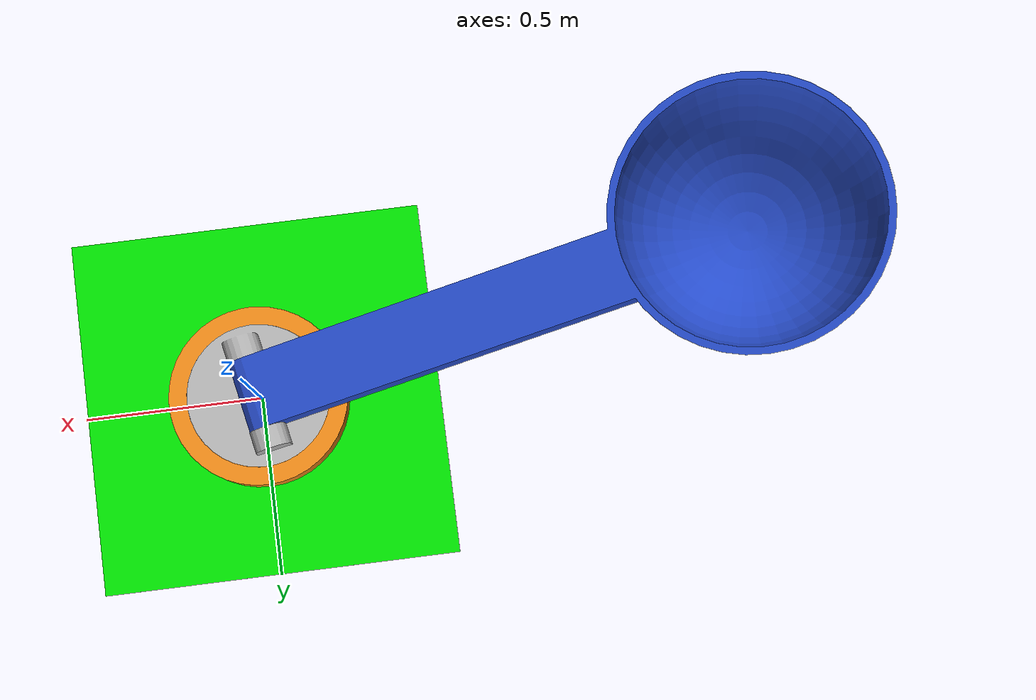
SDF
<?xml version='1.0'?>
<sdf version='1.6'>
  <model name='catapult_2'>
    <link name="world"/>
    <joint name="fixed" type="fixed">
      <parent>world</parent>
      <child>base_link</child>

    </joint>

    <link name='base_link'>
      <pose frame=''>0 0 0 0 -0 0</pose>
      <inertial>
        <pose frame=''>0 0 0.037532 0 -0 0</pose>
        <mass>12.095</mass>
        <inertia>
          <ixx>0.2406</ixx>
          <ixy>-9.1075e-34</ixy>
          <ixz>-6.7067e-34</ixz>
          <iyy>0.2406</iyy>
          <iyz>-6.0663e-18</iyz>
          <izz>0.4628</izz>
        </inertia>
      </inertial>
      <self_collide>0</self_collide>
      <kinematic>0</kinematic>
      <visual name='base_link_visual'>
        <pose frame=''>0 0 0 0 -0 0</pose>
        <geometry>
          <mesh>
            <scale>1 1 1</scale>
            <uri>/home/panyam/mybot_ws/src/hitter_pole/meshes/base_link.STL</uri>
          </mesh>
        </geometry>
        <cast_shadows>1</cast_shadows>
        <transparency>0</transparency>
        <material>
          <emissive>1 0 0.1 0</emissive>
          <ambient>1 0.509 0.047 1</ambient>
          <diffuse>1 1 0.047 1</diffuse>
          <specular>1 1 0.5 1</specular>
          <script>
            <name>Gazebo/Orange</name>
            <uri>__default__</uri>
          </script>
          <shader type='vertex'>
            <normal_map>__default__</normal_map>
          </shader>
        </material>
      </visual>
      <collision name='base_link_collision'>
        <laser_retro>0</laser_retro>
        <max_contacts>10</max_contacts>
        <pose frame=''>0 0 0 0 -0 0</pose>
        <geometry>
          <mesh>
            <uri>/home/panyam/mybot_ws/src/hitter_pole/meshes/base_link.STL</uri>
          </mesh>
        </geometry>
        <surface>
          <friction>
            <ode>
              <mu>1</mu>
              <mu2>1</mu2>
              <fdir1>0 0 0</fdir1>
              <slip1>0</slip1>
              <slip2>0</slip2>
            </ode>
            <torsional>
              <coefficient>1</coefficient>
              <patch_radius>0</patch_radius>
              <surface_radius>0</surface_radius>
              <use_patch_radius>1</use_patch_radius>
              <ode>
                <slip>0</slip>
              </ode>
            </torsional>
          </friction>
          <bounce>
            <restitution_coefficient>0</restitution_coefficient>
            <threshold>1e+06</threshold>
          </bounce>
          <contact>
            <collide_without_contact>0</collide_without_contact>
            <collide_without_contact_bitmask>1</collide_without_contact_bitmask>
            <collide_bitmask>1</collide_bitmask>
            <ode>
              <soft_cfm>0</soft_cfm>
              <soft_erp>0.2</soft_erp>
              <kp>1e+13</kp>
              <kd>1</kd>
              <max_vel>0.01</max_vel>
              <min_depth>0</min_depth>
            </ode>
            <bullet>
              <split_impulse>1</split_impulse>
              <split_impulse_penetration_threshold>-0.01</split_impulse_penetration_threshold>
              <soft_cfm>0</soft_cfm>
              <soft_erp>0.2</soft_erp>
              <kp>1e+13</kp>
              <kd>1</kd>
            </bullet>
          </contact>
        </surface>
      </collision>
    </link>
    <link name='arm_bowl'>
      <pose frame=''>0 0 0 0 -0 0</pose>
      <inertial>
        <pose frame=''>-0.87531 -0.17061 0.2793 0 -0 0</pose>
        <mass>1</mass>
        <inertia>
          <ixx>1.5373</ixx>
          <ixy>-1.822</ixy>
          <ixz>1.4294</ixz>
          <iyy>1</iyy>
          <iyz>0.27861</iyz>
          <izz>1</izz>
        </inertia>
      </inertial>
      <self_collide>0</self_collide>
      <kinematic>0</kinematic>
      <visual name='arm_bowl_visual'>
        <pose frame=''>0 0 0 0 -0 0</pose>
        <geometry>
          <mesh>
            <scale>1 1 1</scale>
            <uri>/home/panyam/mybot_ws/src/hitter_pole/meshes/arm_bowl.STL</uri>
          </mesh>
        </geometry>
        <material>
          <ambient>0 0 1 0</ambient>
          <diffuse>1 1 0 0</diffuse>
          <specular>1 0.1 0.5 1</specular>
          <emissive>0 0 0.5 1</emissive>
          <script>
            <name>Gazebo/Blue</name>
            <uri>__default__</uri>
          </script>
          <shader type='vertex'>
            <normal_map>__default__</normal_map>
          </shader>
        </material>
        <cast_shadows>1</cast_shadows>
        <transparency>0</transparency>
      </visual>
      <collision name='arm_bowl_collision'>
        <laser_retro>0</laser_retro>
        <max_contacts>10</max_contacts>
        <pose frame=''>0 0 0 0 -0 0</pose>
        <geometry>
          <mesh>
            <uri>/home/panyam/mybot_ws/src/hitter_pole/meshes/arm_bowl.STL</uri>
          </mesh>
        </geometry>
        <surface>
          <friction>
            <ode>
              <mu>1</mu>
              <mu2>1</mu2>
              <fdir1>0 0 0</fdir1>
              <slip1>0</slip1>
              <slip2>0</slip2>
            </ode>
            <torsional>
              <coefficient>1</coefficient>
              <patch_radius>0</patch_radius>
              <surface_radius>0</surface_radius>
              <use_patch_radius>1</use_patch_radius>
              <ode>
                <slip>0</slip>
              </ode>
            </torsional>
          </friction>
          <bounce>
            <restitution_coefficient>0</restitution_coefficient>
            <threshold>1e+06</threshold>
          </bounce>
          <contact>
            <collide_without_contact>0</collide_without_contact>
            <collide_without_contact_bitmask>1</collide_without_contact_bitmask>
            <collide_bitmask>1</collide_bitmask>
            <ode>
              <soft_cfm>0</soft_cfm>
              <soft_erp>0.2</soft_erp>
              <kp>1e+13</kp>
              <kd>1</kd>
              <max_vel>0.01</max_vel>
              <min_depth>0</min_depth>
            </ode>
            <bullet>
              <split_impulse>1</split_impulse>
              <split_impulse_penetration_threshold>-0.01</split_impulse_penetration_threshold>
              <soft_cfm>0</soft_cfm>
              <soft_erp>0.2</soft_erp>
              <kp>1e+13</kp>
              <kd>1</kd>
            </bullet>
          </contact>
        </surface>
      </collision>
    </link>
    <link name='link2'>
      <pose frame=''>0 0 0 0 -0 0</pose>
      <inertial>
        <pose frame=''>0 -0 0.079372 0 -0 0</pose>
        <mass>8.6111</mass>
        <inertia>
          <ixx>0.10153</ixx>
          <ixy>0.0033108</ixy>
          <ixz>2.6986e-19</ixz>
          <iyy>0.085194</iyy>
          <iyz>-1.0662e-17</iyz>
          <izz>0.17002</izz>
        </inertia>
      </inertial>
      <self_collide>0</self_collide>
      <kinematic>0</kinematic>
      <visual name='link2_visual'>
        <pose frame=''>0 0 0 0 -0 0</pose>
        <geometry>
          <mesh>
            <scale>1 1 1</scale>
            <uri>/home/panyam/mybot_ws/src/hitter_pole/meshes/link2.STL</uri>
          </mesh>
        </geometry>
        <cast_shadows>1</cast_shadows>
        <transparency>0</transparency>
      </visual>
      <collision name='link2_collision'>
        <laser_retro>0</laser_retro>
        <max_contacts>10</max_contacts>
        <pose frame=''>0 0 0 0 -0 0</pose>
        <geometry>
          <mesh>
            <uri>/home/panyam/mybot_ws/src/hitter_pole/meshes/link2.STL</uri>
          </mesh>
        </geometry>
        <surface>
          <friction>
            <ode>
              <mu>1</mu>
              <mu2>1</mu2>
              <fdir1>0 0 0</fdir1>
              <slip1>0</slip1>
              <slip2>0</slip2>
            </ode>
            <torsional>
              <coefficient>1</coefficient>
              <patch_radius>0</patch_radius>
              <surface_radius>0</surface_radius>
              <use_patch_radius>1</use_patch_radius>
              <ode>
                <slip>0</slip>
              </ode>
            </torsional>
          </friction>
          <bounce>
            <restitution_coefficient>0</restitution_coefficient>
            <threshold>1e+06</threshold>
          </bounce>
          <contact>
            <collide_without_contact>0</collide_without_contact>
            <collide_without_contact_bitmask>1</collide_without_contact_bitmask>
            <collide_bitmask>1</collide_bitmask>
            <ode>
              <soft_cfm>0</soft_cfm>
              <soft_erp>0.2</soft_erp>
              <kp>1e+13</kp>
              <kd>1</kd>
              <max_vel>0.01</max_vel>
              <min_depth>0</min_depth>
            </ode>
            <bullet>
              <split_impulse>1</split_impulse>
              <split_impulse_penetration_threshold>-0.01</split_impulse_penetration_threshold>
              <soft_cfm>0</soft_cfm>
              <soft_erp>0.2</soft_erp>
              <kp>1e+13</kp>
              <kd>1</kd>
            </bullet>
          </contact>
        </surface>
      </collision>
    </link>
    <model name='target_plate'>
      <link name='link'>
        <pose frame=''>0 0 0 0 -0 0</pose>
        <inertial>
          <mass>1000</mass>
          <inertia>
            <ixx>0.166667</ixx>
            <ixy>0</ixy>
            <ixz>0</ixz>
            <iyy>0.166667</iyy>
            <iyz>0</iyz>
            <izz>0.166667</izz>
          </inertia>
          <pose frame=''>0 0 0 0 -0 0</pose>
        </inertial>
        <self_collide>0</self_collide>
        <kinematic>0</kinematic>
        <gravity>1</gravity>
        <visual name='visual'>
          <geometry>
            <box>
              <size>1 1 0.001</size>
            </box>
          </geometry>
          <material>
            <script>
              <name>Gazebo/Grey</name>
              <uri>file://media/materials/scripts/gazebo.material</uri>
            </script>
            <ambient>0 0.9 0 1</ambient>
            <diffuse>0.7 0.7 0.7 1</diffuse>
            <specular>0.01 0.01 0.01 1</specular>
            <emissive>0 0 0 1</emissive>
            <shader type='vertex'>
              <normal_map>__default__</normal_map>
            </shader>
          </material>
          <pose frame=''>0 0 0 0 -0 0</pose>
          <cast_shadows>1</cast_shadows>
          <transparency>0</transparency>
        </visual>
        <collision name='collision'>
          <laser_retro>0</laser_retro>
          <max_contacts>10</max_contacts>
          <pose frame=''>0 0 0 0 -0 0</pose>
          <geometry>
            <box>
              <size>1 1 0.001</size>
            </box>
          </geometry>
          <surface>
            <friction>
              <ode>
                <mu>200</mu>
                <mu2>200</mu2>
                <fdir1>0 0 0</fdir1>
                <slip1>0</slip1>
                <slip2>0</slip2>
              </ode>
              <torsional>
                <coefficient>1</coefficient>
                <patch_radius>0</patch_radius>
                <surface_radius>0</surface_radius>
                <use_patch_radius>1</use_patch_radius>
                <ode>
                  <slip>0</slip>
                </ode>
              </torsional>
            </friction>
            <bounce>
              <restitution_coefficient>0</restitution_coefficient>
              <threshold>1e+06</threshold>
            </bounce>
            <contact>
              <collide_without_contact>0</collide_without_contact>
              <collide_without_contact_bitmask>1</collide_without_contact_bitmask>
              <collide_bitmask>1</collide_bitmask>
              <ode>
                <soft_cfm>0</soft_cfm>
                <soft_erp>0.2</soft_erp>
                <kp>1e+13</kp>
                <kd>1</kd>
                <max_vel>0.01</max_vel>
                <min_depth>0</min_depth>
              </ode>
              <bullet>
                <split_impulse>1</split_impulse>
                <split_impulse_penetration_threshold>-0.01</split_impulse_penetration_threshold>
                <soft_cfm>0</soft_cfm>
                <soft_erp>0.2</soft_erp>
                <kp>1e+13</kp>
                <kd>1</kd>
              </bullet>
            </contact>
          </surface>
        </collision>
      </link>
      <static>0</static>
      <allow_auto_disable>1</allow_auto_disable>
      <pose frame=''>-0.00426 -0.002535 -0 0 -0 0</pose>
    </model>
    <joint name='joint2' type='revolute'>
      <parent>base_link</parent>
      <child>link2</child>
      <pose frame=''>0 0 0 0 -0 0</pose>
      <axis>
        <xyz>0 0 1</xyz>
        <use_parent_model_frame>1</use_parent_model_frame>
        <dynamics>
          <spring_reference>0</spring_reference>
          <spring_stiffness>0</spring_stiffness>
          <damping>0</damping>
          <friction>0</friction>
        </dynamics>
      </axis>
      <physics>
        <ode>
          <limit>
            <cfm>0</cfm>
            <erp>0.2</erp>
          </limit>
          <suspension>
            <cfm>0</cfm>
            <erp>0.2</erp>
          </suspension>
        </ode>
      </physics>
    </joint>
    <joint name='link_JOINT_0' type='fixed'>
      <parent>target_plate::link</parent>
      <child>base_link</child>
      <pose frame=''>0 0 0 0 -0 0</pose>
      <physics>
        <ode>
          <limit>
            <cfm>0</cfm>
            <erp>0.2</erp>
          </limit>
          <suspension>
            <cfm>0</cfm>
            <erp>0.2</erp>
          </suspension>
        </ode>
      </physics>
    </joint>
    <joint name='throwing' type='revolute'>
      <parent>link2</parent>
      <child>arm_bowl</child>
      <pose frame=''>0 0 0.1 0 -0 0</pose>
      <axis>
        <xyz>0.19132 -0.98153 0</xyz>
        <use_parent_model_frame>1</use_parent_model_frame>
        <limit>
          <lower>-0.785</lower>
          <upper>0.16</upper>
          <effort>-1</effort>
          <velocity>10</velocity>
        </limit>
        <dynamics>
          <spring_reference>0</spring_reference>
          <spring_stiffness>0</spring_stiffness>
          <damping>0</damping>
          <friction>0</friction>
        </dynamics>
      </axis>
      <physics>
        <ode>
          <limit>
            <cfm>0</cfm>
            <erp>0.2</erp>
          </limit>
          <suspension>
            <cfm>0</cfm>
            <erp>0.2</erp>
          </suspension>
        </ode>
      </physics>
    </joint>
    <static>0</static>
    <allow_auto_disable>1</allow_auto_disable>

    <plugin name="gazebo_ros_control" filename="libgazebo_ros_control.so">
      <robotNamespace>/catapult</robotNamespace>
      <robotSimType>gazebo_ros_control/DefaultRobotHWSim</robotSimType>
      <legacyModeNS>true</legacyModeNS>
    </plugin>
  </model>
</sdf>
